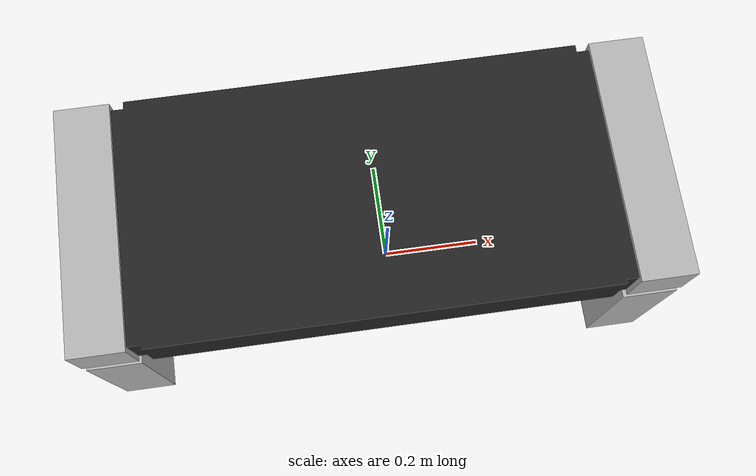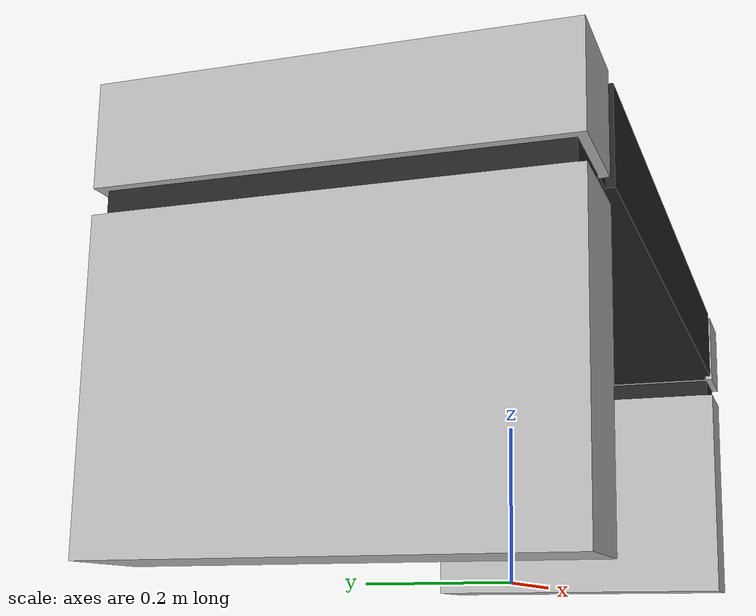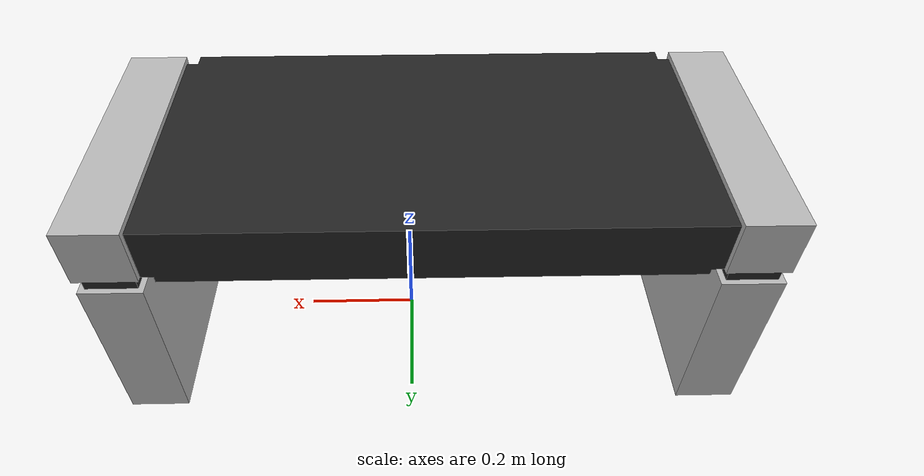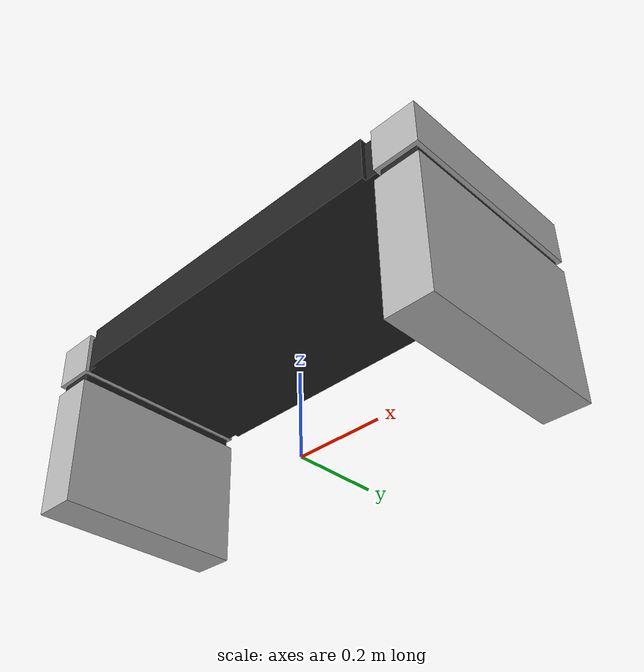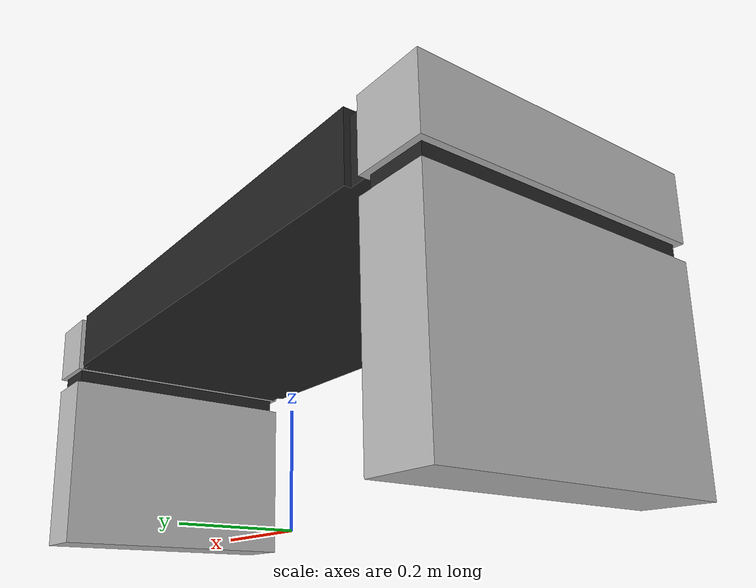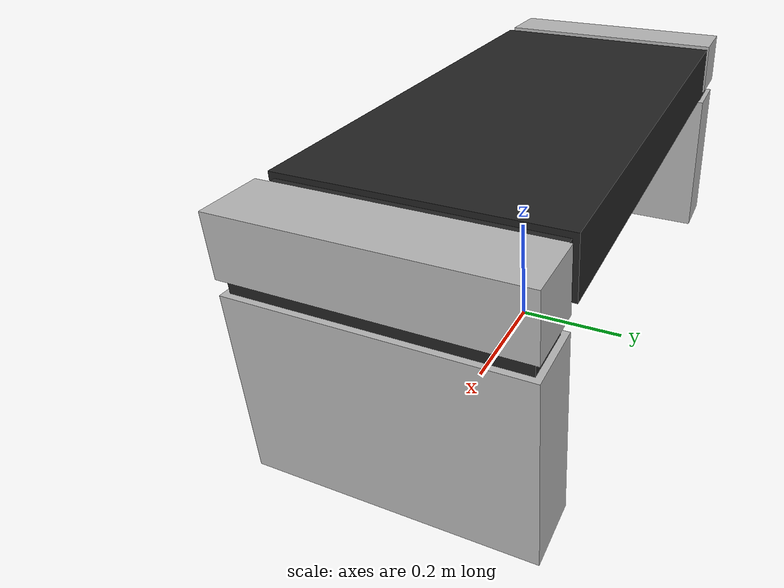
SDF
<?xml version='1.0'?>
<sdf version='1.4'>
  <model name="coffee_table">
    <link name="coffee_table">
      <visual name="coffee_table">
	<geometry>
	  <mesh><uri>model://coffee_table/meshes/coffee_table.dae</uri></mesh>
        </geometry>
      </visual>
      <collision name="coffee_table">
	<pose>0 0 0.22 0 0 0</pose>
	<geometry>
	  <box>
	    <size>1.1 0.46 0.44</size>
	  </box>
        </geometry>
      </collision>
    </link>
  </model>
</sdf>
